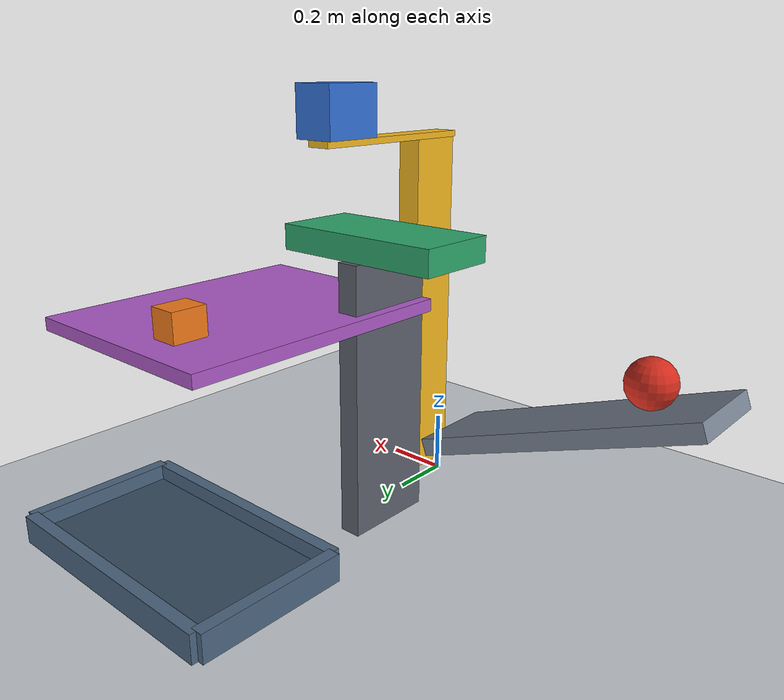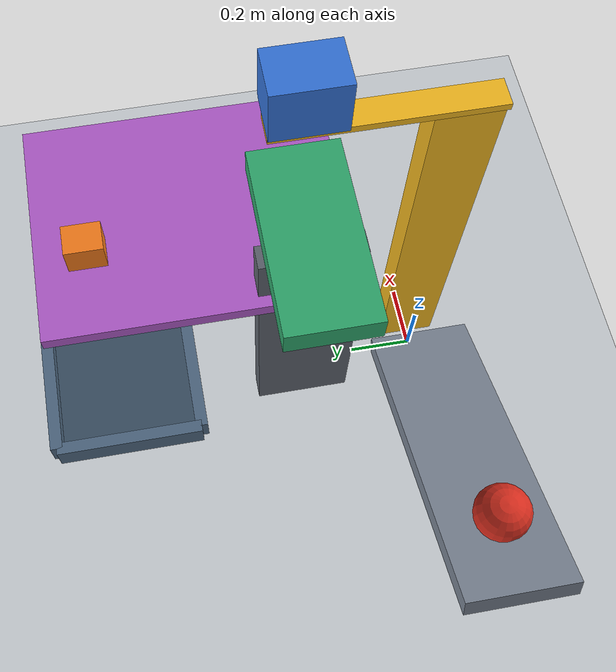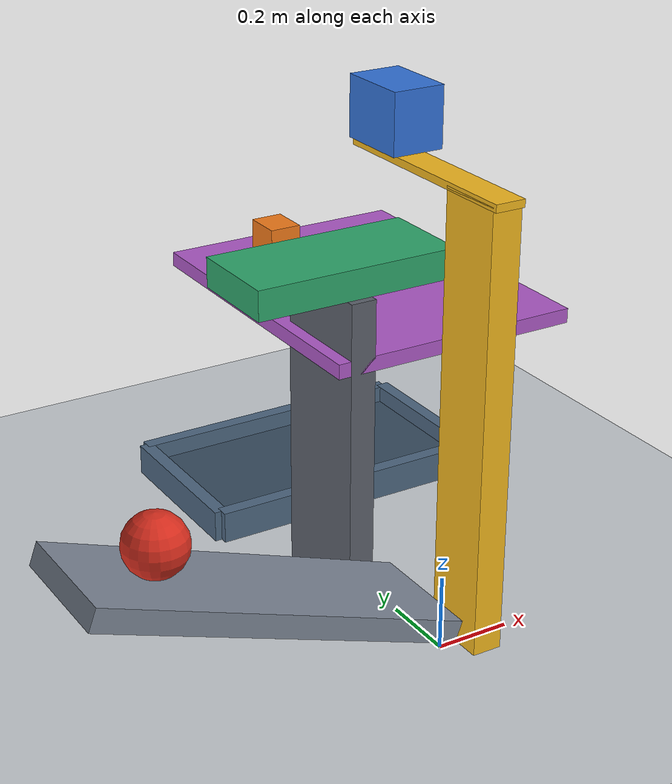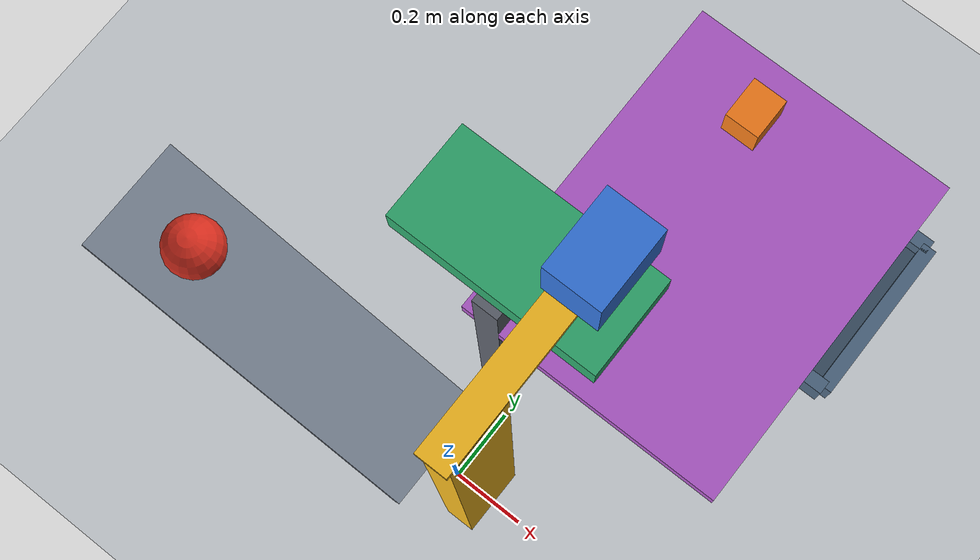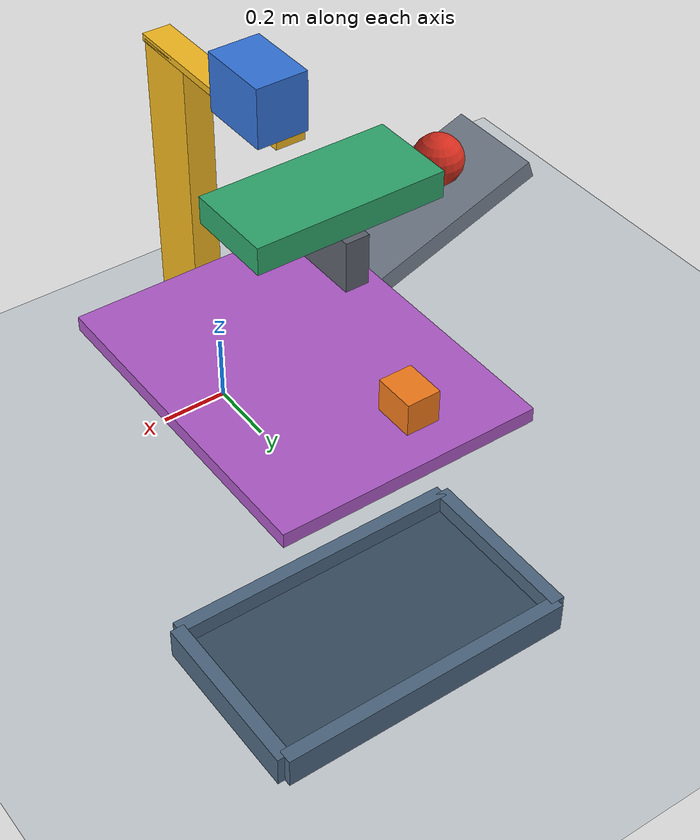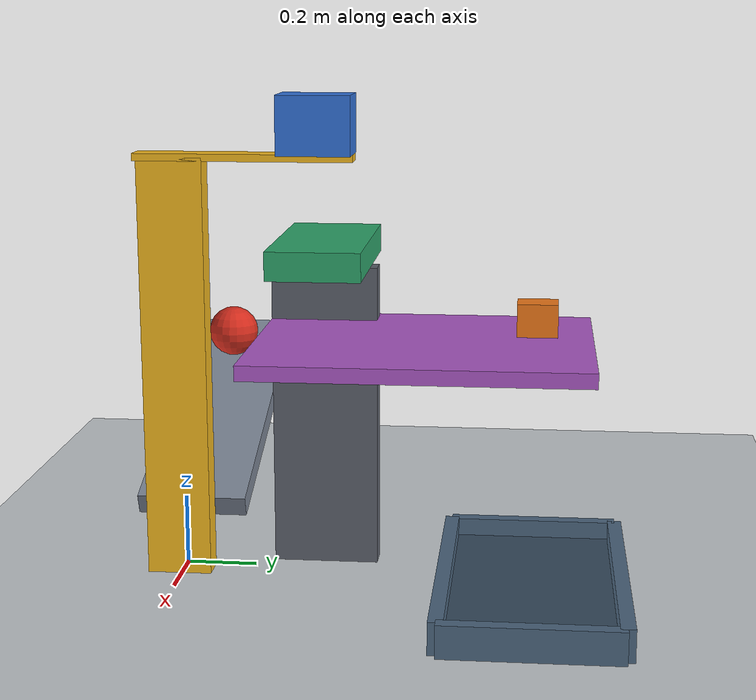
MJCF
<mujoco model="passive_bridge_cascade">
  <compiler angle="degree" autolimits="true"/>
  <option timestep="0.002" gravity="0 0 -9.81" integrator="implicitfast" solver="Newton" iterations="100" tolerance="1e-10"/>
  <size njmax="1000" nconmax="300"/>

  <visual>
    <global azimuth="135" elevation="-25"/>
  </visual>

  <worldbody>
    <light name="overhead_light" pos="0 0 4" dir="0 0 -1"/>
    <camera name="overview" pos="2.7 -3.6 2.5" xyaxes="0.8 0.6 0 -0.25 0.33 0.91"/>

    <geom name="floor" type="plane" size="4 4 0.1" friction="1.0 0.005 0.01" condim="6" rgba="0.78 0.80 0.82 1"/>

    <!-- The initial ball contact point is 0.8 m uphill from the ramp's low end. -->
    <body name="ramp" pos="-0.530107 0 0.322819" euler="0 20 0">
      <geom name="ramp_surface" type="box" size="0.5 0.16 0.03" friction="1.0 0.005 0.003" condim="6" rgba="0.48 0.52 0.58 1"/>
    </body>

    <body name="ball" pos="-0.774392 0 0.528791">
      <freejoint name="ball_free"/>
      <geom name="ball_sphere" type="sphere" size="0.08" mass="0.75" friction="1.0 0.005 0.01" condim="6" solref="0.008 1" rgba="0.85 0.18 0.12 1"/>
    </body>

    <!-- The stem intercepts the ball without entering the bridge or flap lane.
         Only the high cap extends sideways beneath bridge1. -->
    <body name="key" pos="0.08 0 0.60">
      <joint name="key_slide" type="slide" axis="1 0 0" range="0 0.55" limited="true" damping="0.015" frictionloss="0.02" solreflimit="0.008 1"/>
      <geom name="key_stem" type="box" size="0.04 0.09 0.59" mass="0.035" priority="1" friction="0.015 0.001 0.0001" condim="3" solref="0.008 1" rgba="0.95 0.72 0.12 1"/>
      <geom name="key_support_cap" type="box" pos="0 0.20 0.59" size="0.04 0.30 0.01" mass="0.015" priority="1" friction="0.015 0.001 0.0001" condim="3" solref="0.008 1" rgba="0.95 0.72 0.12 1"/>
    </body>

    <body name="bridge1" pos="0.10 0.40 1.28">
      <freejoint name="bridge1_free"/>
      <geom name="bridge1_block" type="box" size="0.07 0.10 0.08" mass="0.50" friction="0.6 0.005 0.001" solref="0.008 1" rgba="0.20 0.45 0.85 1"/>
    </body>

    <!-- An off-center impact on the right side tips bridge2 off this pedestal. -->
    <body name="bridge2_pedestal" pos="-0.08 0.40 0.435">
      <geom name="bridge2_pedestal_column" type="box" size="0.035 0.15 0.435" friction="0.9 0.005 0.001" solref="0.008 1" rgba="0.36 0.38 0.42 1"/>
    </body>

    <body name="bridge2" pos="-0.08 0.40 0.91">
      <freejoint name="bridge2_free"/>
      <geom name="bridge2_block" type="box" size="0.28 0.13 0.04" mass="0.35" friction="0.6 0.005 0.001" solref="0.008 1" rgba="0.18 0.65 0.42 1"/>
    </body>

    <!-- Hinge friction holds the initial payload load.
         Negative rotation lowers the left end toward the -55-degree stop. -->
    <body name="flap" pos="0.55 0.70 0.70">
      <joint name="flap_hinge" type="hinge" axis="0 1 0" range="-55 0" limited="true" frictionloss="0.9" damping="0.015" armature="0.001" solreflimit="0.004 1"/>
      <geom name="flap_plate" type="box" pos="-0.35 0 0" size="0.35 0.45 0.02" mass="0.08" friction="1.0 0.005 0.001" solref="0.008 1" rgba="0.68 0.35 0.78 1"/>
    </body>

    <!-- The payload is laterally separated from the bridge impact lane. -->
    <body name="payload" pos="0.10 1.00 0.765">
      <freejoint name="payload_free"/>
      <geom name="payload_block" type="box" size="0.045 0.055 0.045" mass="0.12" friction="0.8 0.005 0.001" solref="0.008 1" rgba="0.95 0.48 0.10 1"/>
    </body>

    <!-- The lowered flap remains above the bin rim. -->
    <body name="bin" pos="0.20 1.00 0">
      <geom name="bin_bottom" type="box" pos="0 0 0.02" size="0.42 0.24 0.02" friction="1.2 0.01 0.003" condim="6" solref="0.008 1" rgba="0.22 0.30 0.38 1"/>
      <geom name="bin_left_wall" type="box" pos="-0.42 0 0.045" size="0.02 0.24 0.045" friction="1.0 0.005 0.001" solref="0.008 1" rgba="0.30 0.40 0.50 1"/>
      <geom name="bin_right_wall" type="box" pos="0.42 0 0.045" size="0.02 0.24 0.045" friction="1.0 0.005 0.001" solref="0.008 1" rgba="0.30 0.40 0.50 1"/>
      <geom name="bin_front_wall" type="box" pos="0 -0.24 0.045" size="0.42 0.02 0.045" friction="1.0 0.005 0.001" solref="0.008 1" rgba="0.30 0.40 0.50 1"/>
      <geom name="bin_back_wall" type="box" pos="0 0.24 0.045" size="0.42 0.02 0.045" friction="1.0 0.005 0.001" solref="0.008 1" rgba="0.30 0.40 0.50 1"/>
    </body>
  </worldbody>

  <keyframe>
    <key name="start" qpos="-0.774392 0 0.528791 1 0 0 0 0 0.10 0.40 1.28 1 0 0 0 -0.08 0.40 0.91 1 0 0 0 0 0.10 1.00 0.765 1 0 0 0"/>
  </keyframe>
</mujoco>
